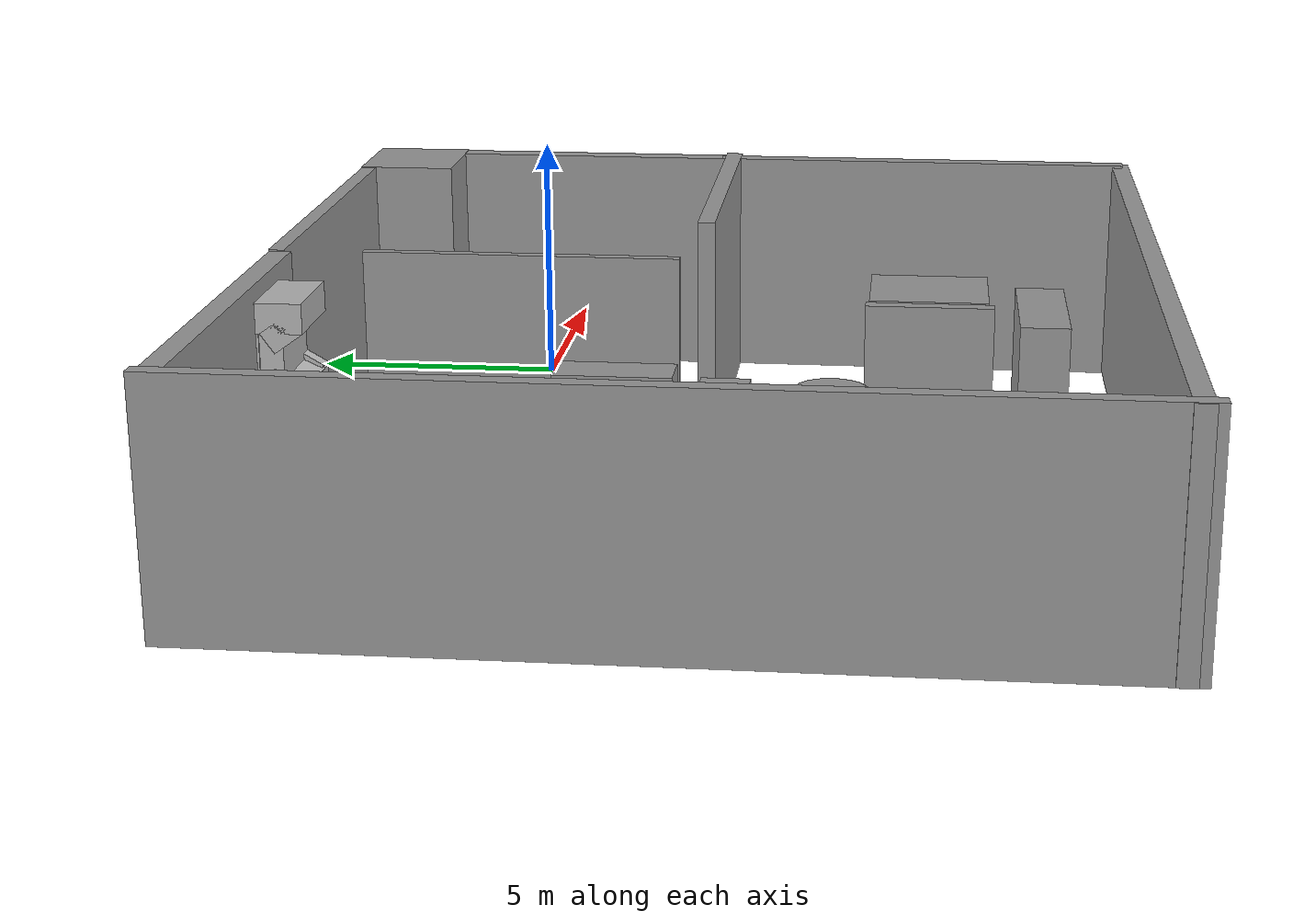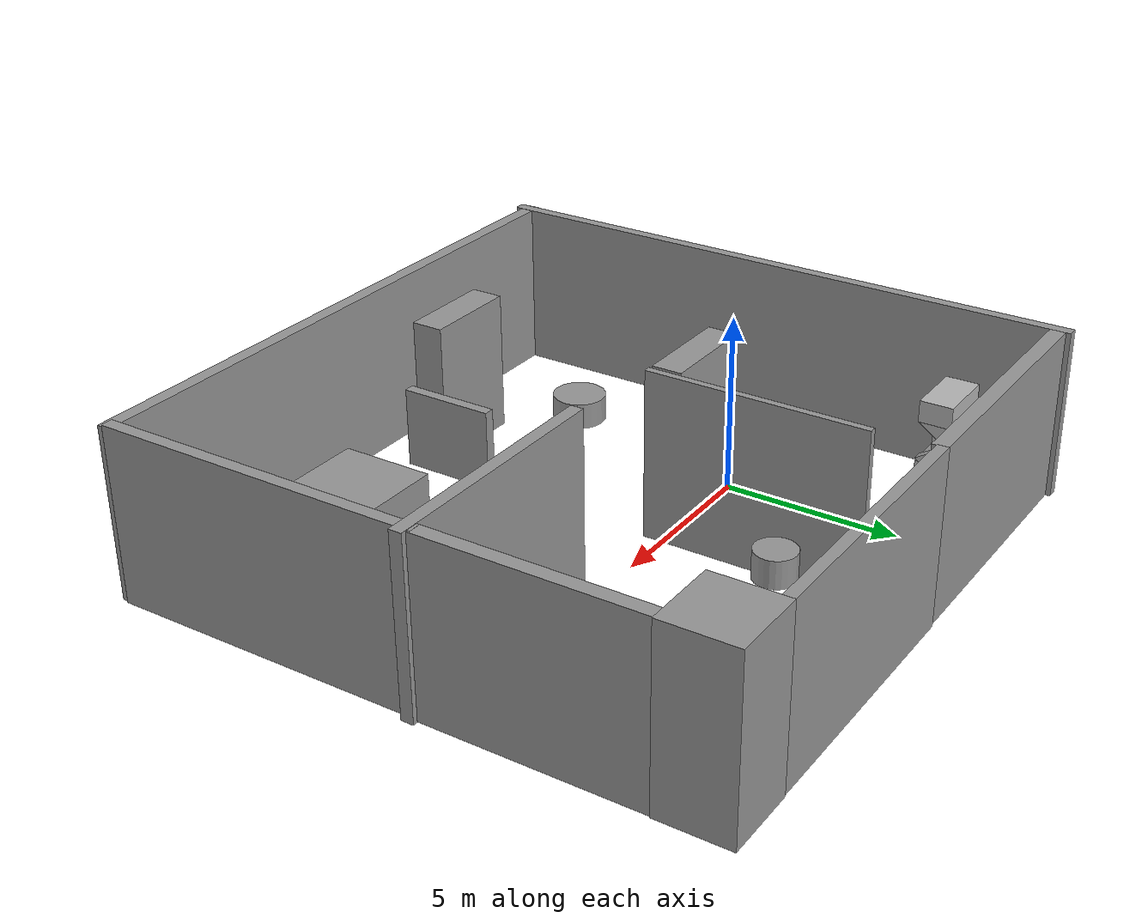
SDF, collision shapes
<?xml version='1.0'?>
<sdf version='1.7'>
  <model name='box'>
    <link name='link'>
      <inertial>
        <mass>8.03434</mass>
        <inertia>
          <ixx>49.8754</ixx>
          <ixy>0</ixy>
          <ixz>0</ixz>
          <iyy>18.6781</iyy>
          <iyz>0</iyz>
          <izz>31.2641</izz>
        </inertia>
        <pose>0 0 0 0 -0 0</pose>
      </inertial>
      <self_collide>0</self_collide>
      <enable_wind>0</enable_wind>
      <kinematic>0</kinematic>
      <pose>-0.361721 0.565222 0.052219 0 -0 0</pose>
      <visual name='visual'>
        <geometry>
          <box>
            <size>0.223371 6.82977 5.27707</size>
          </box>
        </geometry>
        <material>
          <script>
            <name>Gazebo/Grey</name>
            <uri>file://media/materials/scripts/gazebo.material</uri>
          </script>
          <shader type='pixel'/>
          <emissive>0 0 0 1</emissive>
        </material>
        <pose>0 0 0 0 -0 0</pose>
        <transparency>0</transparency>
        <cast_shadows>1</cast_shadows>
      </visual>
      <collision name='collision'>
        <laser_retro>0</laser_retro>
        <max_contacts>10</max_contacts>
        <pose>0 0 0 0 -0 0</pose>
        <geometry>
          <box>
            <size>0.223371 6.82977 5.27707</size>
          </box>
        </geometry>
        <surface>
          <friction>
            <ode>
              <mu>1</mu>
              <mu2>1</mu2>
              <fdir1>0 0 0</fdir1>
              <slip1>0</slip1>
              <slip2>0</slip2>
            </ode>
            <torsional>
              <coefficient>1</coefficient>
              <patch_radius>0</patch_radius>
              <surface_radius>0</surface_radius>
              <use_patch_radius>1</use_patch_radius>
              <ode>
                <slip>0</slip>
              </ode>
            </torsional>
          </friction>
          <bounce>
            <restitution_coefficient>0</restitution_coefficient>
            <threshold>1e+06</threshold>
          </bounce>
          <contact>
            <collide_without_contact>0</collide_without_contact>
            <collide_without_contact_bitmask>1</collide_without_contact_bitmask>
            <collide_bitmask>1</collide_bitmask>
            <ode>
              <soft_cfm>0</soft_cfm>
              <soft_erp>0.2</soft_erp>
              <kp>1e+13</kp>
              <kd>1</kd>
              <max_vel>0.01</max_vel>
              <min_depth>0</min_depth>
            </ode>
            <bullet>
              <split_impulse>1</split_impulse>
              <split_impulse_penetration_threshold>-0.01</split_impulse_penetration_threshold>
              <soft_cfm>0</soft_cfm>
              <soft_erp>0.2</soft_erp>
              <kp>1e+13</kp>
              <kd>1</kd>
            </bullet>
          </contact>
        </surface>
      </collision>
    </link>
    <link name='link_0'>
      <inertial>
        <mass>16.0508</mass>
        <inertia>
          <ixx>38.9419</ixx>
          <ixy>0</ixy>
          <ixz>0</ixz>
          <iyy>142.879</iyy>
          <iyz>0</iyz>
          <izz>104.254</izz>
        </inertia>
        <pose>0 0 0 0 -0 0</pose>
      </inertial>
      <pose>3.91515 5.86284 4.3e-05 0 -1e-05 0</pose>
      <visual name='visual'>
        <pose>0 0 0 0 -0 0</pose>
        <geometry>
          <box>
            <size>8.82182 0.344174 5.38476</size>
          </box>
        </geometry>
        <material>
          <lighting>1</lighting>
          <script>
            <uri>file://media/materials/scripts/gazebo.material</uri>
            <name>Gazebo/Grey</name>
          </script>
          <shader type='pixel'/>
        </material>
        <transparency>0</transparency>
        <cast_shadows>1</cast_shadows>
      </visual>
      <collision name='collision'>
        <laser_retro>0</laser_retro>
        <max_contacts>10</max_contacts>
        <pose>0 0 0 0 -0 0</pose>
        <geometry>
          <box>
            <size>8.82182 0.344174 5.38476</size>
          </box>
        </geometry>
        <surface>
          <friction>
            <ode>
              <mu>1</mu>
              <mu2>1</mu2>
              <fdir1>0 0 0</fdir1>
              <slip1>0</slip1>
              <slip2>0</slip2>
            </ode>
            <torsional>
              <coefficient>1</coefficient>
              <patch_radius>0</patch_radius>
              <surface_radius>0</surface_radius>
              <use_patch_radius>1</use_patch_radius>
              <ode>
                <slip>0</slip>
              </ode>
            </torsional>
          </friction>
          <bounce>
            <restitution_coefficient>0</restitution_coefficient>
            <threshold>1e+06</threshold>
          </bounce>
          <contact>
            <collide_without_contact>0</collide_without_contact>
            <collide_without_contact_bitmask>1</collide_without_contact_bitmask>
            <collide_bitmask>1</collide_bitmask>
            <ode>
              <soft_cfm>0</soft_cfm>
              <soft_erp>0.2</soft_erp>
              <kp>1e+13</kp>
              <kd>1</kd>
              <max_vel>0.01</max_vel>
              <min_depth>0</min_depth>
            </ode>
            <bullet>
              <split_impulse>1</split_impulse>
              <split_impulse_penetration_threshold>-0.01</split_impulse_penetration_threshold>
              <soft_cfm>0</soft_cfm>
              <soft_erp>0.2</soft_erp>
              <kp>1e+13</kp>
              <kd>1</kd>
            </bullet>
          </contact>
        </surface>
      </collision>
    </link>
    <link name='link_1'>
      <inertial>
        <mass>28.5507</mass>
        <inertia>
          <ixx>82.2061</ixx>
          <ixy>0</ixy>
          <ixz>0</ixz>
          <iyy>82.8252</iyy>
          <iyz>0</iyz>
          <izz>25.0653</izz>
        </inertia>
        <pose>0 0 0 0 -0 0</pose>
      </inertial>
      <pose>9.0772 4.91604 9.4e-05 0 -1e-05 0</pose>
      <visual name='visual'>
        <pose>0 0 0 0 -0 0</pose>
        <geometry>
          <box>
            <size>2.32328 2.26659 5.42349</size>
          </box>
        </geometry>
        <material>
          <lighting>1</lighting>
          <script>
            <uri>file://media/materials/scripts/gazebo.material</uri>
            <name>Gazebo/Grey</name>
          </script>
          <shader type='pixel'/>
        </material>
        <transparency>0</transparency>
        <cast_shadows>1</cast_shadows>
      </visual>
      <collision name='collision'>
        <laser_retro>0</laser_retro>
        <max_contacts>10</max_contacts>
        <pose>0 0 0 0 -0 0</pose>
        <geometry>
          <box>
            <size>2.32328 2.26659 5.42349</size>
          </box>
        </geometry>
        <surface>
          <friction>
            <ode>
              <mu>1</mu>
              <mu2>1</mu2>
              <fdir1>0 0 0</fdir1>
              <slip1>0</slip1>
              <slip2>0</slip2>
            </ode>
            <torsional>
              <coefficient>1</coefficient>
              <patch_radius>0</patch_radius>
              <surface_radius>0</surface_radius>
              <use_patch_radius>1</use_patch_radius>
              <ode>
                <slip>0</slip>
              </ode>
            </torsional>
          </friction>
          <bounce>
            <restitution_coefficient>0</restitution_coefficient>
            <threshold>1e+06</threshold>
          </bounce>
          <contact>
            <collide_without_contact>0</collide_without_contact>
            <collide_without_contact_bitmask>1</collide_without_contact_bitmask>
            <collide_bitmask>1</collide_bitmask>
            <ode>
              <soft_cfm>0</soft_cfm>
              <soft_erp>0.2</soft_erp>
              <kp>1e+13</kp>
              <kd>1</kd>
              <max_vel>0.01</max_vel>
              <min_depth>0</min_depth>
            </ode>
            <bullet>
              <split_impulse>1</split_impulse>
              <split_impulse_penetration_threshold>-0.01</split_impulse_penetration_threshold>
              <soft_cfm>0</soft_cfm>
              <soft_erp>0.2</soft_erp>
              <kp>1e+13</kp>
              <kd>1</kd>
            </bullet>
          </contact>
        </surface>
      </collision>
    </link>
    <link name='link_10'>
      <inertial>
        <mass>1.25325</mass>
        <inertia>
          <ixx>0.19035</ixx>
          <ixy>0</ixy>
          <ixz>0</ixz>
          <iyy>0.19035</iyy>
          <iyz>0</iyz>
          <izz>0.235383</izz>
        </inertia>
        <pose>0 0 0 0 -0 0</pose>
      </inertial>
      <pose>2.85156 2.96628 3.3e-05 0 -1e-05 0</pose>
      <visual name='visual'>
        <pose>0 0 0 0 -0 0</pose>
        <geometry>
          <cylinder>
            <radius>0.612893</radius>
            <length>0.834095</length>
          </cylinder>
        </geometry>
        <material>
          <lighting>1</lighting>
          <script>
            <uri>file://media/materials/scripts/gazebo.material</uri>
            <name>Gazebo/Grey</name>
          </script>
          <shader type='pixel'/>
        </material>
        <transparency>0</transparency>
        <cast_shadows>1</cast_shadows>
      </visual>
      <collision name='collision'>
        <laser_retro>0</laser_retro>
        <max_contacts>10</max_contacts>
        <pose>0 0 0 0 -0 0</pose>
        <geometry>
          <cylinder>
            <radius>0.612893</radius>
            <length>0.834095</length>
          </cylinder>
        </geometry>
        <surface>
          <friction>
            <ode>
              <mu>1</mu>
              <mu2>1</mu2>
              <fdir1>0 0 0</fdir1>
              <slip1>0</slip1>
              <slip2>0</slip2>
            </ode>
            <torsional>
              <coefficient>1</coefficient>
              <patch_radius>0</patch_radius>
              <surface_radius>0</surface_radius>
              <use_patch_radius>1</use_patch_radius>
              <ode>
                <slip>0</slip>
              </ode>
            </torsional>
          </friction>
          <bounce>
            <restitution_coefficient>0</restitution_coefficient>
            <threshold>1e+06</threshold>
          </bounce>
          <contact>
            <collide_without_contact>0</collide_without_contact>
            <collide_without_contact_bitmask>1</collide_without_contact_bitmask>
            <collide_bitmask>1</collide_bitmask>
            <ode>
              <soft_cfm>0</soft_cfm>
              <soft_erp>0.2</soft_erp>
              <kp>1e+13</kp>
              <kd>1</kd>
              <max_vel>0.01</max_vel>
              <min_depth>0</min_depth>
            </ode>
            <bullet>
              <split_impulse>1</split_impulse>
              <split_impulse_penetration_threshold>-0.01</split_impulse_penetration_threshold>
              <soft_cfm>0</soft_cfm>
              <soft_erp>0.2</soft_erp>
              <kp>1e+13</kp>
              <kd>1</kd>
            </bullet>
          </contact>
        </surface>
      </collision>
    </link>
    <link name='link_10_clone'>
      <inertial>
        <mass>1.25325</mass>
        <inertia>
          <ixx>0.19035</ixx>
          <ixy>0</ixy>
          <ixz>0</ixz>
          <iyy>0.19035</iyy>
          <iyz>0</iyz>
          <izz>0.235383</izz>
        </inertia>
        <pose>0 0 0 0 -0 0</pose>
      </inertial>
      <pose>5.3333 2.94146 8.5e-05 0 -2e-05 0</pose>
      <visual name='visual'>
        <pose>0 0 0 0 -0 0</pose>
        <geometry>
          <cylinder>
            <radius>0.612893</radius>
            <length>0.834095</length>
          </cylinder>
        </geometry>
        <material>
          <lighting>1</lighting>
          <script>
            <uri>file://media/materials/scripts/gazebo.material</uri>
            <name>Gazebo/Grey</name>
          </script>
          <shader type='pixel'/>
        </material>
        <transparency>0</transparency>
        <cast_shadows>1</cast_shadows>
      </visual>
      <collision name='collision'>
        <laser_retro>0</laser_retro>
        <max_contacts>10</max_contacts>
        <pose>0 0 0 0 -0 0</pose>
        <geometry>
          <cylinder>
            <radius>0.612893</radius>
            <length>0.834095</length>
          </cylinder>
        </geometry>
        <surface>
          <friction>
            <ode>
              <mu>1</mu>
              <mu2>1</mu2>
              <fdir1>0 0 0</fdir1>
              <slip1>0</slip1>
              <slip2>0</slip2>
            </ode>
            <torsional>
              <coefficient>1</coefficient>
              <patch_radius>0</patch_radius>
              <surface_radius>0</surface_radius>
              <use_patch_radius>1</use_patch_radius>
              <ode>
                <slip>0</slip>
              </ode>
            </torsional>
          </friction>
          <bounce>
            <restitution_coefficient>0</restitution_coefficient>
            <threshold>1e+06</threshold>
          </bounce>
          <contact>
            <collide_without_contact>0</collide_without_contact>
            <collide_without_contact_bitmask>1</collide_without_contact_bitmask>
            <collide_bitmask>1</collide_bitmask>
            <ode>
              <soft_cfm>0</soft_cfm>
              <soft_erp>0.2</soft_erp>
              <kp>1e+13</kp>
              <kd>1</kd>
              <max_vel>0.01</max_vel>
              <min_depth>0</min_depth>
            </ode>
            <bullet>
              <split_impulse>1</split_impulse>
              <split_impulse_penetration_threshold>-0.01</split_impulse_penetration_threshold>
              <soft_cfm>0</soft_cfm>
              <soft_erp>0.2</soft_erp>
              <kp>1e+13</kp>
              <kd>1</kd>
            </bullet>
          </contact>
        </surface>
      </collision>
    </link>
    <link name='link_11'>
      <inertial>
        <mass>2.60886</mass>
        <inertia>
          <ixx>1.63135</ixx>
          <ixy>0</ixy>
          <ixz>0</ixz>
          <iyy>0.444944</iyy>
          <iyz>0</iyz>
          <izz>1.64148</izz>
        </inertia>
        <pose>0 0 0 0 -0 0</pose>
      </inertial>
      <pose>-1.40281 -1.57183 -9e-06 0 -1e-05 0</pose>
      <visual name='visual'>
        <pose>0 0 0 0 -0 0</pose>
        <geometry>
          <box>
            <size>1.02304 2.55024 1</size>
          </box>
        </geometry>
        <material>
          <lighting>1</lighting>
          <script>
            <uri>file://media/materials/scripts/gazebo.material</uri>
            <name>Gazebo/Grey</name>
          </script>
          <shader type='pixel'/>
        </material>
        <transparency>0</transparency>
        <cast_shadows>1</cast_shadows>
      </visual>
      <collision name='collision'>
        <laser_retro>0</laser_retro>
        <max_contacts>10</max_contacts>
        <pose>0 0 0 0 -0 0</pose>
        <geometry>
          <box>
            <size>1.02304 2.55024 1</size>
          </box>
        </geometry>
        <surface>
          <friction>
            <ode>
              <mu>1</mu>
              <mu2>1</mu2>
              <fdir1>0 0 0</fdir1>
              <slip1>0</slip1>
              <slip2>0</slip2>
            </ode>
            <torsional>
              <coefficient>1</coefficient>
              <patch_radius>0</patch_radius>
              <surface_radius>0</surface_radius>
              <use_patch_radius>1</use_patch_radius>
              <ode>
                <slip>0</slip>
              </ode>
            </torsional>
          </friction>
          <bounce>
            <restitution_coefficient>0</restitution_coefficient>
            <threshold>1e+06</threshold>
          </bounce>
          <contact>
            <collide_without_contact>0</collide_without_contact>
            <collide_without_contact_bitmask>1</collide_without_contact_bitmask>
            <collide_bitmask>1</collide_bitmask>
            <ode>
              <soft_cfm>0</soft_cfm>
              <soft_erp>0.2</soft_erp>
              <kp>1e+13</kp>
              <kd>1</kd>
              <max_vel>0.01</max_vel>
              <min_depth>0</min_depth>
            </ode>
            <bullet>
              <split_impulse>1</split_impulse>
              <split_impulse_penetration_threshold>-0.01</split_impulse_penetration_threshold>
              <soft_cfm>0</soft_cfm>
              <soft_erp>0.2</soft_erp>
              <kp>1e+13</kp>
              <kd>1</kd>
            </bullet>
          </contact>
        </surface>
      </collision>
    </link>
    <link name='link_12'>
      <inertial>
        <mass>7.17966</mass>
        <inertia>
          <ixx>3.28832</ixx>
          <ixy>0</ixy>
          <ixz>0</ixz>
          <iyy>9.54953</iyy>
          <iyz>0</iyz>
          <izz>7.45782</izz>
        </inertia>
        <pose>0 0 0 0 -0 0</pose>
      </inertial>
      <pose>-5.26841 -4.12218 -4.7e-05 0 -1e-05 0</pose>
      <visual name='visual'>
        <pose>0 0 0 0 -0 0</pose>
        <geometry>
          <box>
            <size>3.38599 1 2.12039</size>
          </box>
        </geometry>
        <material>
          <lighting>1</lighting>
          <script>
            <uri>file://media/materials/scripts/gazebo.material</uri>
            <name>Gazebo/Grey</name>
          </script>
          <shader type='pixel'/>
        </material>
        <transparency>0</transparency>
        <cast_shadows>1</cast_shadows>
      </visual>
      <collision name='collision'>
        <laser_retro>0</laser_retro>
        <max_contacts>10</max_contacts>
        <pose>0 0 0 0 -0 0</pose>
        <geometry>
          <box>
            <size>3.38599 1 2.12039</size>
          </box>
        </geometry>
        <surface>
          <friction>
            <ode>
              <mu>1</mu>
              <mu2>1</mu2>
              <fdir1>0 0 0</fdir1>
              <slip1>0</slip1>
              <slip2>0</slip2>
            </ode>
            <torsional>
              <coefficient>1</coefficient>
              <patch_radius>0</patch_radius>
              <surface_radius>0</surface_radius>
              <use_patch_radius>1</use_patch_radius>
              <ode>
                <slip>0</slip>
              </ode>
            </torsional>
          </friction>
          <bounce>
            <restitution_coefficient>0</restitution_coefficient>
            <threshold>1e+06</threshold>
          </bounce>
          <contact>
            <collide_without_contact>0</collide_without_contact>
            <collide_without_contact_bitmask>1</collide_without_contact_bitmask>
            <collide_bitmask>1</collide_bitmask>
            <ode>
              <soft_cfm>0</soft_cfm>
              <soft_erp>0.2</soft_erp>
              <kp>1e+13</kp>
              <kd>1</kd>
              <max_vel>0.01</max_vel>
              <min_depth>0</min_depth>
            </ode>
            <bullet>
              <split_impulse>1</split_impulse>
              <split_impulse_penetration_threshold>-0.01</split_impulse_penetration_threshold>
              <soft_cfm>0</soft_cfm>
              <soft_erp>0.2</soft_erp>
              <kp>1e+13</kp>
              <kd>1</kd>
            </bullet>
          </contact>
        </surface>
      </collision>
    </link>
    <link name='link_13'>
      <inertial>
        <mass>1</mass>
        <inertia>
          <ixx>0.166667</ixx>
          <ixy>0</ixy>
          <ixz>0</ixz>
          <iyy>0.166667</iyy>
          <iyz>0</iyz>
          <izz>0.166667</izz>
        </inertia>
      </inertial>
      <pose>-3.93845 0.935689 -3.4e-05 0 -1e-05 0</pose>
      <visual name='visual'>
        <pose>0 0 0 0 -0 0</pose>
        <geometry>
          <box>
            <size>1 1 1</size>
          </box>
        </geometry>
        <material>
          <lighting>1</lighting>
          <script>
            <uri>file://media/materials/scripts/gazebo.material</uri>
            <name>Gazebo/Grey</name>
          </script>
          <shader type='pixel'/>
        </material>
        <transparency>0</transparency>
        <cast_shadows>1</cast_shadows>
      </visual>
      <collision name='collision'>
        <laser_retro>0</laser_retro>
        <max_contacts>10</max_contacts>
        <pose>0 0 0 0 -0 0</pose>
        <geometry>
          <box>
            <size>1 1 1</size>
          </box>
        </geometry>
        <surface>
          <friction>
            <ode>
              <mu>1</mu>
              <mu2>1</mu2>
              <fdir1>0 0 0</fdir1>
              <slip1>0</slip1>
              <slip2>0</slip2>
            </ode>
            <torsional>
              <coefficient>1</coefficient>
              <patch_radius>0</patch_radius>
              <surface_radius>0</surface_radius>
              <use_patch_radius>1</use_patch_radius>
              <ode>
                <slip>0</slip>
              </ode>
            </torsional>
          </friction>
          <bounce>
            <restitution_coefficient>0</restitution_coefficient>
            <threshold>1e+06</threshold>
          </bounce>
          <contact>
            <collide_without_contact>0</collide_without_contact>
            <collide_without_contact_bitmask>1</collide_without_contact_bitmask>
            <collide_bitmask>1</collide_bitmask>
            <ode>
              <soft_cfm>0</soft_cfm>
              <soft_erp>0.2</soft_erp>
              <kp>1e+13</kp>
              <kd>1</kd>
              <max_vel>0.01</max_vel>
              <min_depth>0</min_depth>
            </ode>
            <bullet>
              <split_impulse>1</split_impulse>
              <split_impulse_penetration_threshold>-0.01</split_impulse_penetration_threshold>
              <soft_cfm>0</soft_cfm>
              <soft_erp>0.2</soft_erp>
              <kp>1e+13</kp>
              <kd>1</kd>
            </bullet>
          </contact>
        </surface>
      </collision>
    </link>
    <link name='link_14'>
      <inertial>
        <mass>1.88407</mass>
        <inertia>
          <ixx>0.381197</ixx>
          <ixy>0</ixy>
          <ixz>0</ixz>
          <iyy>0.381197</iyy>
          <iyz>0</iyz>
          <izz>0.576191</izz>
        </inertia>
        <pose>0 0 0 0 -0 0</pose>
      </inertial>
      <pose>-2.00254 -6.17787 -1.5e-05 0 -1e-05 0</pose>
      <visual name='visual'>
        <pose>0 0 0 0 -0 0</pose>
        <geometry>
          <cylinder>
            <radius>0.782077</radius>
            <length>0.770053</length>
          </cylinder>
        </geometry>
        <material>
          <lighting>1</lighting>
          <script>
            <uri>file://media/materials/scripts/gazebo.material</uri>
            <name>Gazebo/Grey</name>
          </script>
          <shader type='pixel'/>
        </material>
        <transparency>0</transparency>
        <cast_shadows>1</cast_shadows>
      </visual>
      <collision name='collision'>
        <laser_retro>0</laser_retro>
        <max_contacts>10</max_contacts>
        <pose>0 0 0 0 -0 0</pose>
        <geometry>
          <cylinder>
            <radius>0.782077</radius>
            <length>0.770053</length>
          </cylinder>
        </geometry>
        <surface>
          <friction>
            <ode>
              <mu>1</mu>
              <mu2>1</mu2>
              <fdir1>0 0 0</fdir1>
              <slip1>0</slip1>
              <slip2>0</slip2>
            </ode>
            <torsional>
              <coefficient>1</coefficient>
              <patch_radius>0</patch_radius>
              <surface_radius>0</surface_radius>
              <use_patch_radius>1</use_patch_radius>
              <ode>
                <slip>0</slip>
              </ode>
            </torsional>
          </friction>
          <bounce>
            <restitution_coefficient>0</restitution_coefficient>
            <threshold>1e+06</threshold>
          </bounce>
          <contact>
            <collide_without_contact>0</collide_without_contact>
            <collide_without_contact_bitmask>1</collide_without_contact_bitmask>
            <collide_bitmask>1</collide_bitmask>
            <ode>
              <soft_cfm>0</soft_cfm>
              <soft_erp>0.2</soft_erp>
              <kp>1e+13</kp>
              <kd>1</kd>
              <max_vel>0.01</max_vel>
              <min_depth>0</min_depth>
            </ode>
            <bullet>
              <split_impulse>1</split_impulse>
              <split_impulse_penetration_threshold>-0.01</split_impulse_penetration_threshold>
              <soft_cfm>0</soft_cfm>
              <soft_erp>0.2</soft_erp>
              <kp>1e+13</kp>
              <kd>1</kd>
            </bullet>
          </contact>
        </surface>
      </collision>
    </link>
    <link name='link_15'>
      <inertial>
        <mass>2.17933</mass>
        <inertia>
          <ixx>2.52079</ixx>
          <ixy>0</ixy>
          <ixz>0</ixz>
          <iyy>1.07098</iyy>
          <iyz>0</iyz>
          <izz>1.48662</izz>
        </inertia>
        <pose>0 0 0 0 -0 0</pose>
      </inertial>
      <pose>1.71761 -8.17676 2.2e-05 0 -1e-05 0</pose>
      <visual name='visual'>
        <pose>0 0 0 0 -0 0</pose>
        <geometry>
          <box>
            <size>0.318347 2.84331 2.40744</size>
          </box>
        </geometry>
        <material>
          <lighting>1</lighting>
          <script>
            <uri>file://media/materials/scripts/gazebo.material</uri>
            <name>Gazebo/Grey</name>
          </script>
          <shader type='pixel'/>
        </material>
        <transparency>0</transparency>
        <cast_shadows>1</cast_shadows>
      </visual>
      <collision name='collision'>
        <laser_retro>0</laser_retro>
        <max_contacts>10</max_contacts>
        <pose>0 0 0 0 -0 0</pose>
        <geometry>
          <box>
            <size>0.318347 2.84331 2.40744</size>
          </box>
        </geometry>
        <surface>
          <friction>
            <ode>
              <mu>1</mu>
              <mu2>1</mu2>
              <fdir1>0 0 0</fdir1>
              <slip1>0</slip1>
              <slip2>0</slip2>
            </ode>
            <torsional>
              <coefficient>1</coefficient>
              <patch_radius>0</patch_radius>
              <surface_radius>0</surface_radius>
              <use_patch_radius>1</use_patch_radius>
              <ode>
                <slip>0</slip>
              </ode>
            </torsional>
          </friction>
          <bounce>
            <restitution_coefficient>0</restitution_coefficient>
            <threshold>1e+06</threshold>
          </bounce>
          <contact>
            <collide_without_contact>0</collide_without_contact>
            <collide_without_contact_bitmask>1</collide_without_contact_bitmask>
            <collide_bitmask>1</collide_bitmask>
            <ode>
              <soft_cfm>0</soft_cfm>
              <soft_erp>0.2</soft_erp>
              <kp>1e+13</kp>
              <kd>1</kd>
              <max_vel>0.01</max_vel>
              <min_depth>0</min_depth>
            </ode>
            <bullet>
              <split_impulse>1</split_impulse>
              <split_impulse_penetration_threshold>-0.01</split_impulse_penetration_threshold>
              <soft_cfm>0</soft_cfm>
              <soft_erp>0.2</soft_erp>
              <kp>1e+13</kp>
              <kd>1</kd>
            </bullet>
          </contact>
        </surface>
      </collision>
    </link>
    <link name='link_2'>
      <inertial>
        <mass>16.3546</mass>
        <inertia>
          <ixx>40.7876</ixx>
          <ixy>0</ixy>
          <ixz>0</ixz>
          <iyy>120.426</iyy>
          <iyz>0</iyz>
          <izz>80.0554</izz>
        </inertia>
        <pose>0 0 0 0 -0 0</pose>
      </inertial>
      <pose>6.52673 -3.12053 6.9e-05 0 -1e-05 0</pose>
      <visual name='visual'>
        <pose>0 0 0 0 -0 0</pose>
        <geometry>
          <box>
            <size>7.65419 0.391271 5.45658</size>
          </box>
        </geometry>
        <material>
          <lighting>1</lighting>
          <script>
            <uri>file://media/materials/scripts/gazebo.material</uri>
            <name>Gazebo/Grey</name>
          </script>
          <shader type='pixel'/>
        </material>
        <transparency>0</transparency>
        <cast_shadows>1</cast_shadows>
      </visual>
      <collision name='collision'>
        <laser_retro>0</laser_retro>
        <max_contacts>10</max_contacts>
        <pose>0 0 0 0 -0 0</pose>
        <geometry>
          <box>
            <size>7.65419 0.391271 5.45658</size>
          </box>
        </geometry>
        <surface>
          <friction>
            <ode>
              <mu>1</mu>
              <mu2>1</mu2>
              <fdir1>0 0 0</fdir1>
              <slip1>0</slip1>
              <slip2>0</slip2>
            </ode>
            <torsional>
              <coefficient>1</coefficient>
              <patch_radius>0</patch_radius>
              <surface_radius>0</surface_radius>
              <use_patch_radius>1</use_patch_radius>
              <ode>
                <slip>0</slip>
              </ode>
            </torsional>
          </friction>
          <bounce>
            <restitution_coefficient>0</restitution_coefficient>
            <threshold>1e+06</threshold>
          </bounce>
          <contact>
            <collide_without_contact>0</collide_without_contact>
            <collide_without_contact_bitmask>1</collide_without_contact_bitmask>
            <collide_bitmask>1</collide_bitmask>
            <ode>
              <soft_cfm>0</soft_cfm>
              <soft_erp>0.2</soft_erp>
              <kp>1e+13</kp>
              <kd>1</kd>
              <max_vel>0.01</max_vel>
              <min_depth>0</min_depth>
            </ode>
            <bullet>
              <split_impulse>1</split_impulse>
              <split_impulse_penetration_threshold>-0.01</split_impulse_penetration_threshold>
              <soft_cfm>0</soft_cfm>
              <soft_erp>0.2</soft_erp>
              <kp>1e+13</kp>
              <kd>1</kd>
            </bullet>
          </contact>
        </surface>
      </collision>
    </link>
    <link name='link_3'>
      <inertial>
        <mass>16.8013</mass>
        <inertia>
          <ixx>110.532</ixx>
          <ixy>0</ixy>
          <ixz>0</ixz>
          <iyy>41.3297</iyy>
          <iyz>0</iyz>
          <izz>69.7459</izz>
        </inertia>
        <pose>0 0 0 0 -0 0</pose>
      </inertial>
      <pose>9.98187 0.58327 0.000103 0 -1e-05 0</pose>
      <visual name='visual'>
        <pose>0 0 0 0 -0 0</pose>
        <geometry>
          <box>
            <size>0.440477 7.04419 5.41525</size>
          </box>
        </geometry>
        <material>
          <lighting>1</lighting>
          <script>
            <uri>file://media/materials/scripts/gazebo.material</uri>
            <name>Gazebo/Grey</name>
          </script>
          <shader type='pixel'/>
        </material>
        <transparency>0</transparency>
        <cast_shadows>1</cast_shadows>
      </visual>
      <collision name='collision'>
        <laser_retro>0</laser_retro>
        <max_contacts>10</max_contacts>
        <pose>0 0 0 0 -0 0</pose>
        <geometry>
          <box>
            <size>0.440477 7.04419 5.41525</size>
          </box>
        </geometry>
        <surface>
          <friction>
            <ode>
              <mu>1</mu>
              <mu2>1</mu2>
              <fdir1>0 0 0</fdir1>
              <slip1>0</slip1>
              <slip2>0</slip2>
            </ode>
            <torsional>
              <coefficient>1</coefficient>
              <patch_radius>0</patch_radius>
              <surface_radius>0</surface_radius>
              <use_patch_radius>1</use_patch_radius>
              <ode>
                <slip>0</slip>
              </ode>
            </torsional>
          </friction>
          <bounce>
            <restitution_coefficient>0</restitution_coefficient>
            <threshold>1e+06</threshold>
          </bounce>
          <contact>
            <collide_without_contact>0</collide_without_contact>
            <collide_without_contact_bitmask>1</collide_without_contact_bitmask>
            <collide_bitmask>1</collide_bitmask>
            <ode>
              <soft_cfm>0</soft_cfm>
              <soft_erp>0.2</soft_erp>
              <kp>1e+13</kp>
              <kd>1</kd>
              <max_vel>0.01</max_vel>
              <min_depth>0</min_depth>
            </ode>
            <bullet>
              <split_impulse>1</split_impulse>
              <split_impulse_penetration_threshold>-0.01</split_impulse_penetration_threshold>
              <soft_cfm>0</soft_cfm>
              <soft_erp>0.2</soft_erp>
              <kp>1e+13</kp>
              <kd>1</kd>
            </bullet>
          </contact>
        </surface>
      </collision>
    </link>
    <link name='link_4'>
      <inertial>
        <mass>6.69431</mass>
        <inertia>
          <ixx>4.90886</ixx>
          <ixy>0</ixy>
          <ixz>0</ixz>
          <iyy>3.76317</iyy>
          <iyz>0</iyz>
          <izz>7.55631</izz>
        </inertia>
        <pose>0 0 0 0 -0 0</pose>
      </inertial>
      <pose>5.7442 -8.16603 6.1e-05 0 -1e-05 0</pose>
      <visual name='visual'>
        <pose>0 0 0 0 -0 0</pose>
        <geometry>
          <box>
            <size>2.39702 2.79275 1</size>
          </box>
        </geometry>
        <material>
          <lighting>1</lighting>
          <script>
            <uri>file://media/materials/scripts/gazebo.material</uri>
            <name>Gazebo/Grey</name>
          </script>
          <shader type='pixel'/>
        </material>
        <transparency>0</transparency>
        <cast_shadows>1</cast_shadows>
      </visual>
      <collision name='collision'>
        <laser_retro>0</laser_retro>
        <max_contacts>10</max_contacts>
        <pose>0 0 0 0 -0 0</pose>
        <geometry>
          <box>
            <size>2.39702 2.79275 1</size>
          </box>
        </geometry>
        <surface>
          <friction>
            <ode>
              <mu>1</mu>
              <mu2>1</mu2>
              <fdir1>0 0 0</fdir1>
              <slip1>0</slip1>
              <slip2>0</slip2>
            </ode>
            <torsional>
              <coefficient>1</coefficient>
              <patch_radius>0</patch_radius>
              <surface_radius>0</surface_radius>
              <use_patch_radius>1</use_patch_radius>
              <ode>
                <slip>0</slip>
              </ode>
            </torsional>
          </friction>
          <bounce>
            <restitution_coefficient>0</restitution_coefficient>
            <threshold>1e+06</threshold>
          </bounce>
          <contact>
            <collide_without_contact>0</collide_without_contact>
            <collide_without_contact_bitmask>1</collide_without_contact_bitmask>
            <collide_bitmask>1</collide_bitmask>
            <ode>
              <soft_cfm>0</soft_cfm>
              <soft_erp>0.2</soft_erp>
              <kp>1e+13</kp>
              <kd>1</kd>
              <max_vel>0.01</max_vel>
              <min_depth>0</min_depth>
            </ode>
            <bullet>
              <split_impulse>1</split_impulse>
              <split_impulse_penetration_threshold>-0.01</split_impulse_penetration_threshold>
              <soft_cfm>0</soft_cfm>
              <soft_erp>0.2</soft_erp>
              <kp>1e+13</kp>
              <kd>1</kd>
            </bullet>
          </contact>
        </surface>
      </collision>
    </link>
    <link name='link_5'>
      <inertial>
        <mass>20.5173</mass>
        <inertia>
          <ixx>224.073</ixx>
          <ixy>0</ixy>
          <ixz>0</ixz>
          <iyy>50.5078</iyy>
          <iyz>0</iyz>
          <izz>174.048</izz>
        </inertia>
        <pose>0 0 0 0 -0 0</pose>
      </inertial>
      <pose>9.96143 -7.87915 0.000102 0 -1e-05 0</pose>
      <visual name='visual'>
        <pose>0 0 0 0 -0 0</pose>
        <geometry>
          <box>
            <size>0.375679 10.0824 5.42214</size>
          </box>
        </geometry>
        <material>
          <lighting>1</lighting>
          <script>
            <uri>file://media/materials/scripts/gazebo.material</uri>
            <name>Gazebo/Grey</name>
          </script>
          <shader type='pixel'/>
        </material>
        <transparency>0</transparency>
        <cast_shadows>1</cast_shadows>
      </visual>
      <collision name='collision'>
        <laser_retro>0</laser_retro>
        <max_contacts>10</max_contacts>
        <pose>0 0 0 0 -0 0</pose>
        <geometry>
          <box>
            <size>0.375679 10.0824 5.42214</size>
          </box>
        </geometry>
        <surface>
          <friction>
            <ode>
              <mu>1</mu>
              <mu2>1</mu2>
              <fdir1>0 0 0</fdir1>
              <slip1>0</slip1>
              <slip2>0</slip2>
            </ode>
            <torsional>
              <coefficient>1</coefficient>
              <patch_radius>0</patch_radius>
              <surface_radius>0</surface_radius>
              <use_patch_radius>1</use_patch_radius>
              <ode>
                <slip>0</slip>
              </ode>
            </torsional>
          </friction>
          <bounce>
            <restitution_coefficient>0</restitution_coefficient>
            <threshold>1e+06</threshold>
          </bounce>
          <contact>
            <collide_without_contact>0</collide_without_contact>
            <collide_without_contact_bitmask>1</collide_without_contact_bitmask>
            <collide_bitmask>1</collide_bitmask>
            <ode>
              <soft_cfm>0</soft_cfm>
              <soft_erp>0.2</soft_erp>
              <kp>1e+13</kp>
              <kd>1</kd>
              <max_vel>0.01</max_vel>
              <min_depth>0</min_depth>
            </ode>
            <bullet>
              <split_impulse>1</split_impulse>
              <split_impulse_penetration_threshold>-0.01</split_impulse_penetration_threshold>
              <soft_cfm>0</soft_cfm>
              <soft_erp>0.2</soft_erp>
              <kp>1e+13</kp>
              <kd>1</kd>
            </bullet>
          </contact>
        </surface>
      </collision>
    </link>
    <link name='link_6'>
      <inertial>
        <mass>42.8575</mass>
        <inertia>
          <ixx>101.755</ixx>
          <ixy>0</ixy>
          <ixz>0</ixz>
          <iyy>1453.85</iyy>
          <iyz>0</iyz>
          <izz>1353.31</izz>
        </inertia>
        <pose>0 0 0 0 -0 0</pose>
      </inertial>
      <pose>0.415229 -12.866 9e-06 0 -1e-05 0</pose>
      <visual name='visual'>
        <pose>0 0 0 0 -0 0</pose>
        <geometry>
          <box>
            <size>19.4616 0.41343 5.32168</size>
          </box>
        </geometry>
        <material>
          <lighting>1</lighting>
          <script>
            <uri>file://media/materials/scripts/gazebo.material</uri>
            <name>Gazebo/Grey</name>
          </script>
          <shader type='pixel'/>
        </material>
        <transparency>0</transparency>
        <cast_shadows>1</cast_shadows>
      </visual>
      <collision name='collision'>
        <laser_retro>0</laser_retro>
        <max_contacts>10</max_contacts>
        <pose>0 0 0 0 -0 0</pose>
        <geometry>
          <box>
            <size>19.4616 0.41343 5.32168</size>
          </box>
        </geometry>
        <surface>
          <friction>
            <ode>
              <mu>1</mu>
              <mu2>1</mu2>
              <fdir1>0 0 0</fdir1>
              <slip1>0</slip1>
              <slip2>0</slip2>
            </ode>
            <torsional>
              <coefficient>1</coefficient>
              <patch_radius>0</patch_radius>
              <surface_radius>0</surface_radius>
              <use_patch_radius>1</use_patch_radius>
              <ode>
                <slip>0</slip>
              </ode>
            </torsional>
          </friction>
          <bounce>
            <restitution_coefficient>0</restitution_coefficient>
            <threshold>1e+06</threshold>
          </bounce>
          <contact>
            <collide_without_contact>0</collide_without_contact>
            <collide_without_contact_bitmask>1</collide_without_contact_bitmask>
            <collide_bitmask>1</collide_bitmask>
            <ode>
              <soft_cfm>0</soft_cfm>
              <soft_erp>0.2</soft_erp>
              <kp>1e+13</kp>
              <kd>1</kd>
              <max_vel>0.01</max_vel>
              <min_depth>0</min_depth>
            </ode>
            <bullet>
              <split_impulse>1</split_impulse>
              <split_impulse_penetration_threshold>-0.01</split_impulse_penetration_threshold>
              <soft_cfm>0</soft_cfm>
              <soft_erp>0.2</soft_erp>
              <kp>1e+13</kp>
              <kd>1</kd>
            </bullet>
          </contact>
        </surface>
      </collision>
    </link>
    <link name='link_7'>
      <inertial>
        <mass>35.6382</mass>
        <inertia>
          <ixx>1206.68</ixx>
          <ixy>0</ixy>
          <ixz>0</ixz>
          <iyy>84.8384</iyy>
          <iyz>0</iyz>
          <izz>1122.55</izz>
        </inertia>
        <pose>0 0 0 0 -0 0</pose>
      </inertial>
      <pose>-9.11144 -3.56305 -8.4e-05 0 -1e-05 0</pose>
      <visual name='visual'>
        <pose>0 0 0 0 -0 0</pose>
        <geometry>
          <box>
            <size>0.344046 19.4387 5.33369</size>
          </box>
        </geometry>
        <material>
          <lighting>1</lighting>
          <script>
            <uri>file://media/materials/scripts/gazebo.material</uri>
            <name>Gazebo/Grey</name>
          </script>
          <shader type='pixel'/>
        </material>
        <transparency>0</transparency>
        <cast_shadows>1</cast_shadows>
      </visual>
      <collision name='collision'>
        <laser_retro>0</laser_retro>
        <max_contacts>10</max_contacts>
        <pose>0 0 0 0 -0 0</pose>
        <geometry>
          <box>
            <size>0.344046 19.4387 5.33369</size>
          </box>
        </geometry>
        <surface>
          <friction>
            <ode>
              <mu>1</mu>
              <mu2>1</mu2>
              <fdir1>0 0 0</fdir1>
              <slip1>0</slip1>
              <slip2>0</slip2>
            </ode>
            <torsional>
              <coefficient>1</coefficient>
              <patch_radius>0</patch_radius>
              <surface_radius>0</surface_radius>
              <use_patch_radius>1</use_patch_radius>
              <ode>
                <slip>0</slip>
              </ode>
            </torsional>
          </friction>
          <bounce>
            <restitution_coefficient>0</restitution_coefficient>
            <threshold>1e+06</threshold>
          </bounce>
          <contact>
            <collide_without_contact>0</collide_without_contact>
            <collide_without_contact_bitmask>1</collide_without_contact_bitmask>
            <collide_bitmask>1</collide_bitmask>
            <ode>
              <soft_cfm>0</soft_cfm>
              <soft_erp>0.2</soft_erp>
              <kp>1e+13</kp>
              <kd>1</kd>
              <max_vel>0.01</max_vel>
              <min_depth>0</min_depth>
            </ode>
            <bullet>
              <split_impulse>1</split_impulse>
              <split_impulse_penetration_threshold>-0.01</split_impulse_penetration_threshold>
              <soft_cfm>0</soft_cfm>
              <soft_erp>0.2</soft_erp>
              <kp>1e+13</kp>
              <kd>1</kd>
            </bullet>
          </contact>
        </surface>
      </collision>
    </link>
    <link name='link_8'>
      <inertial>
        <mass>21.32</mass>
        <inertia>
          <ixx>50.9242</ixx>
          <ixy>0</ixy>
          <ixz>0</ixz>
          <iyy>179.065</iyy>
          <iyz>0</iyz>
          <izz>128.925</izz>
        </inertia>
        <pose>0 0 0 0 -0 0</pose>
      </inertial>
      <pose>-4.73955 5.77222 -4.1e-05 0 -1e-05 0</pose>
      <visual name='visual'>
        <pose>0 0 0 0 -0 0</pose>
        <geometry>
          <box>
            <size>8.50558 0.469745 5.33311</size>
          </box>
        </geometry>
        <material>
          <lighting>1</lighting>
          <script>
            <uri>file://media/materials/scripts/gazebo.material</uri>
            <name>Gazebo/Grey</name>
          </script>
          <shader type='pixel'/>
        </material>
        <transparency>0</transparency>
        <cast_shadows>1</cast_shadows>
      </visual>
      <collision name='collision'>
        <laser_retro>0</laser_retro>
        <max_contacts>10</max_contacts>
        <pose>0 0 0 0 -0 0</pose>
        <geometry>
          <box>
            <size>8.50558 0.469745 5.33311</size>
          </box>
        </geometry>
        <surface>
          <friction>
            <ode>
              <mu>1</mu>
              <mu2>1</mu2>
              <fdir1>0 0 0</fdir1>
              <slip1>0</slip1>
              <slip2>0</slip2>
            </ode>
            <torsional>
              <coefficient>1</coefficient>
              <patch_radius>0</patch_radius>
              <surface_radius>0</surface_radius>
              <use_patch_radius>1</use_patch_radius>
              <ode>
                <slip>0</slip>
              </ode>
            </torsional>
          </friction>
          <bounce>
            <restitution_coefficient>0</restitution_coefficient>
            <threshold>1e+06</threshold>
          </bounce>
          <contact>
            <collide_without_contact>0</collide_without_contact>
            <collide_without_contact_bitmask>1</collide_without_contact_bitmask>
            <collide_bitmask>1</collide_bitmask>
            <ode>
              <soft_cfm>0</soft_cfm>
              <soft_erp>0.2</soft_erp>
              <kp>1e+13</kp>
              <kd>1</kd>
              <max_vel>0.01</max_vel>
              <min_depth>0</min_depth>
            </ode>
            <bullet>
              <split_impulse>1</split_impulse>
              <split_impulse_penetration_threshold>-0.01</split_impulse_penetration_threshold>
              <soft_cfm>0</soft_cfm>
              <soft_erp>0.2</soft_erp>
              <kp>1e+13</kp>
              <kd>1</kd>
            </bullet>
          </contact>
        </surface>
      </collision>
    </link>
    <link name='link_9'>
      <inertial>
        <mass>13.251</mass>
        <inertia>
          <ixx>22.3267</ixx>
          <ixy>0</ixy>
          <ixz>0</ixz>
          <iyy>31.3111</iyy>
          <iyz>0</iyz>
          <izz>11.1928</izz>
        </inertia>
        <pose>0 0 0 0 -0 0</pose>
      </inertial>
      <pose>-1.78561 -10.4398 -1.3e-05 0 -1e-05 0</pose>
      <visual name='visual'>
        <pose>0 0 0 0 -0 0</pose>
        <geometry>
          <box>
            <size>3.02261 1 4.38394</size>
          </box>
        </geometry>
        <material>
          <lighting>1</lighting>
          <script>
            <uri>file://media/materials/scripts/gazebo.material</uri>
            <name>Gazebo/Grey</name>
          </script>
          <shader type='pixel'/>
        </material>
        <transparency>0</transparency>
        <cast_shadows>1</cast_shadows>
      </visual>
      <collision name='collision'>
        <laser_retro>0</laser_retro>
        <max_contacts>10</max_contacts>
        <pose>0 0 0 0 -0 0</pose>
        <geometry>
          <box>
            <size>3.02261 1 4.38394</size>
          </box>
        </geometry>
        <surface>
          <friction>
            <ode>
              <mu>1</mu>
              <mu2>1</mu2>
              <fdir1>0 0 0</fdir1>
              <slip1>0</slip1>
              <slip2>0</slip2>
            </ode>
            <torsional>
              <coefficient>1</coefficient>
              <patch_radius>0</patch_radius>
              <surface_radius>0</surface_radius>
              <use_patch_radius>1</use_patch_radius>
              <ode>
                <slip>0</slip>
              </ode>
            </torsional>
          </friction>
          <bounce>
            <restitution_coefficient>0</restitution_coefficient>
            <threshold>1e+06</threshold>
          </bounce>
          <contact>
            <collide_without_contact>0</collide_without_contact>
            <collide_without_contact_bitmask>1</collide_without_contact_bitmask>
            <collide_bitmask>1</collide_bitmask>
            <ode>
              <soft_cfm>0</soft_cfm>
              <soft_erp>0.2</soft_erp>
              <kp>1e+13</kp>
              <kd>1</kd>
              <max_vel>0.01</max_vel>
              <min_depth>0</min_depth>
            </ode>
            <bullet>
              <split_impulse>1</split_impulse>
              <split_impulse_penetration_threshold>-0.01</split_impulse_penetration_threshold>
              <soft_cfm>0</soft_cfm>
              <soft_erp>0.2</soft_erp>
              <kp>1e+13</kp>
              <kd>1</kd>
            </bullet>
          </contact>
        </surface>
      </collision>
    </link>
    <model name='control_console'>
      <static>1</static>
      <link name='link'>
        <visual name='visual'>
          <geometry>
            <mesh>
              <uri>model://control_console/meshes/console.dae</uri>
            </mesh>
          </geometry>
        </visual>
        <visual name='backvisual'>
          <pose>0 0.29388 1.30113 0 -0 0</pose>
          <geometry>
            <box>
              <size>1.78 0.05 2.60225</size>
            </box>
          </geometry>
        </visual>
        <collision name='back_collision'>
          <pose>0 0.29388 1.30113 0 -0 0</pose>
          <geometry>
            <box>
              <size>1.78 0.05 2.60225</size>
            </box>
          </geometry>
        </collision>
        <collision name='base_collision'>
          <pose>0 -0.14669 0.4128 0 -0 0</pose>
          <geometry>
            <box>
              <size>1.78872 0.97373 0.8256</size>
            </box>
          </geometry>
        </collision>
        <collision name='mid_collision'>
          <pose>0 0.04268 1.48248 0 -0 0</pose>
          <geometry>
            <box>
              <size>1.70162 0.51806 1.5</size>
            </box>
          </geometry>
        </collision>
        <collision name='top_collision'>
          <pose>0 -0.15709 2.31203 0 -0 0</pose>
          <geometry>
            <box>
              <size>1.78872 0.95292 0.62632</size>
            </box>
          </geometry>
        </collision>
        <collision name='panel_collision'>
          <pose>0 -0.36311 0.90329 0.428775 -0 0</pose>
          <geometry>
            <box>
              <size>1.33522 0.550273 0.1</size>
            </box>
          </geometry>
        </collision>
        <collision name='left_lower_shoulder_collision'>
          <pose>-0.7435 -0.19848 0.87 0.520485 -0 0</pose>
          <geometry>
            <box>
              <size>0.30172 0.7 0.5</size>
            </box>
          </geometry>
        </collision>
        <collision name='right_lower_shoulder_collision'>
          <pose>0.7435 -0.19848 0.87 0.520485 -0 0</pose>
          <geometry>
            <box>
              <size>0.30172 0.7 0.5</size>
            </box>
          </geometry>
        </collision>
        <collision name='left_upper_shoulder_collision'>
          <pose>-0.7435 -0.19152 1.99244 -0.620645 0 0</pose>
          <geometry>
            <box>
              <size>0.30172 0.7 0.5</size>
            </box>
          </geometry>
        </collision>
        <collision name='right_upper_shoulder_collision'>
          <pose>0.7435 -0.19152 1.99244 -0.620645 0 0</pose>
          <geometry>
            <box>
              <size>0.30172 0.7 0.5</size>
            </box>
          </geometry>
        </collision>
      </link>
      <pose>-3.58883 4.87692 -3.5e-05 0 -0 0</pose>
    </model>
    <static>0</static>
    <allow_auto_disable>1</allow_auto_disable>
  </model>
</sdf>
